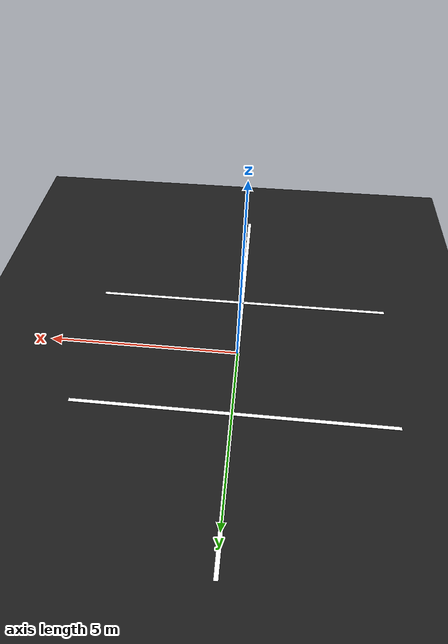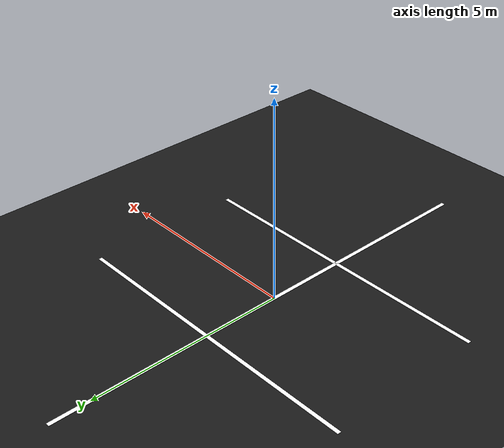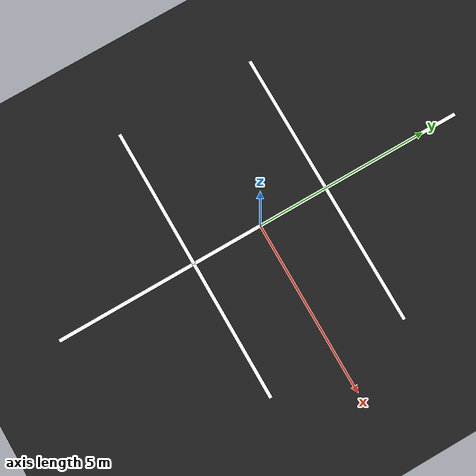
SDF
<?xml version="1.0" ?>
<sdf version="1.8">
  <world name="line_world">

    <physics name="1ms" type="ignored">
      <max_step_size>0.001</max_step_size>
      <real_time_factor>1.0</real_time_factor>
    </physics>

    <plugin filename="gz-sim-physics-system" name="gz::sim::systems::Physics"/>
    <plugin filename="gz-sim-user-commands-system" name="gz::sim::systems::UserCommands"/>
    <plugin filename="gz-sim-scene-broadcaster-system" name="gz::sim::systems::SceneBroadcaster"/>

    <light type="directional" name="sun">
      <cast_shadows>true</cast_shadows>
      <pose>0 0 10 0 0 0</pose>
      <diffuse>1 1 1 1</diffuse>
      <specular>0.5 0.5 0.5 1</specular>
      <direction>-0.5 0.1 -0.9</direction>
    </light>

    <!-- Sol noir -->
    <model name="ground">
      <static>true</static>
      <link name="link">
        <visual name="visual">
          <geometry>
            <plane><normal>0 0 1</normal><size>20 20</size></plane>
          </geometry>
          <material>
            <ambient>0.1 0.1 0.1 1</ambient>
            <diffuse>0.1 0.1 0.1 1</diffuse>
          </material>
        </visual>
        <collision name="collision">
          <geometry>
            <plane><normal>0 0 1</normal><size>20 20</size></plane>
          </geometry>
        </collision>
      </link>
    </model>

    <!-- Ligne blanche segment 1 -->
    <model name="seg1"><static>true</static><pose>0 0 0.01 0 0 0</pose>
      <link name="link"><visual name="v"><geometry><box><size>0.1 4 0.01</size></box></geometry>
      <material><ambient>1 1 1 1</ambient><diffuse>1 1 1 1</diffuse></material></visual></link></model>

    <!-- Ligne blanche segment 2 -->
    <model name="seg2"><static>true</static><pose>2 2 0.01 0 0 1.5707</pose>
      <link name="link"><visual name="v"><geometry><box><size>0.1 4 0.01</size></box></geometry>
      <material><ambient>1 1 1 1</ambient><diffuse>1 1 1 1</diffuse></material></visual></link></model>

    <!-- Ligne blanche segment 3 -->
    <model name="seg3"><static>true</static><pose>0 4 0.01 0 0 0</pose>
      <link name="link"><visual name="v"><geometry><box><size>0.1 4 0.01</size></box></geometry>
      <material><ambient>1 1 1 1</ambient><diffuse>1 1 1 1</diffuse></material></visual></link></model>

    <!-- Ligne blanche segment 4 -->
    <model name="seg4"><static>true</static><pose>-2 2 0.01 0 0 1.5707</pose>
      <link name="link"><visual name="v"><geometry><box><size>0.1 4 0.01</size></box></geometry>
      <material><ambient>1 1 1 1</ambient><diffuse>1 1 1 1</diffuse></material></visual></link></model>

    <!-- Ligne blanche segment 5 -->
    <model name="seg5"><static>true</static><pose>0 -4 0.01 0 0 0</pose>
      <link name="link"><visual name="v"><geometry><box><size>0.1 4 0.01</size></box></geometry>
      <material><ambient>1 1 1 1</ambient><diffuse>1 1 1 1</diffuse></material></visual></link></model>

    <!-- Ligne blanche segment 6 -->
    <model name="seg6"><static>true</static><pose>2 -2 0.01 0 0 1.5707</pose>
      <link name="link"><visual name="v"><geometry><box><size>0.1 4 0.01</size></box></geometry>
      <material><ambient>1 1 1 1</ambient><diffuse>1 1 1 1</diffuse></material></visual></link></model>

    <!-- Ligne blanche segment 7 -->
    <model name="seg7"><static>true</static><pose>-2 -2 0.01 0 0 1.5707</pose>
      <link name="link"><visual name="v"><geometry><box><size>0.1 4 0.01</size></box></geometry>
      <material><ambient>1 1 1 1</ambient><diffuse>1 1 1 1</diffuse></material></visual></link></model>

  </world>
</sdf>
